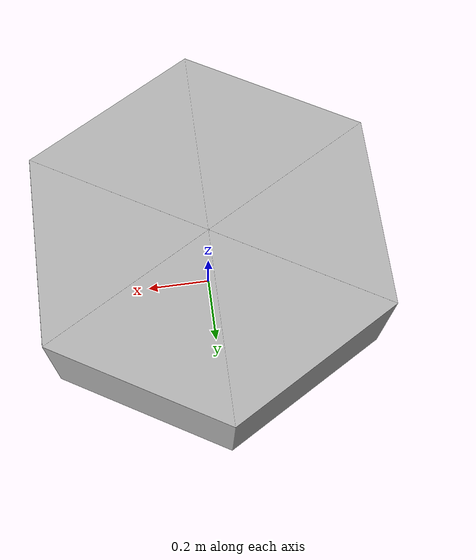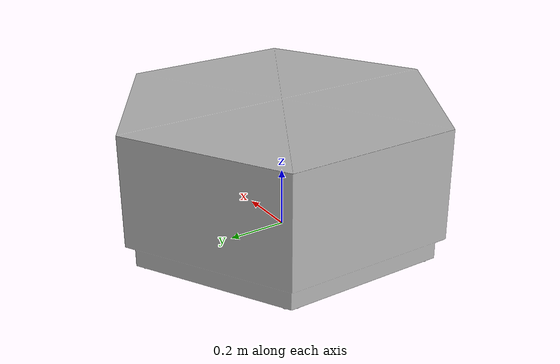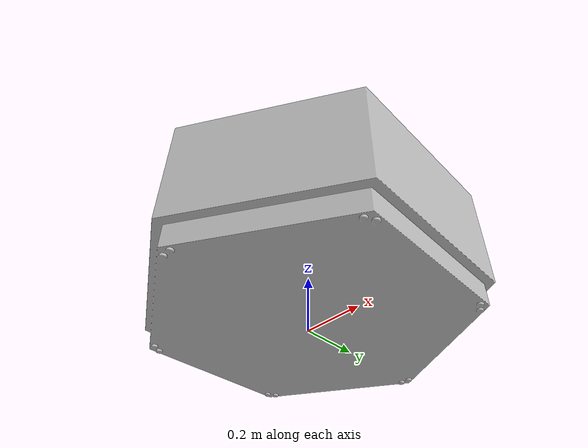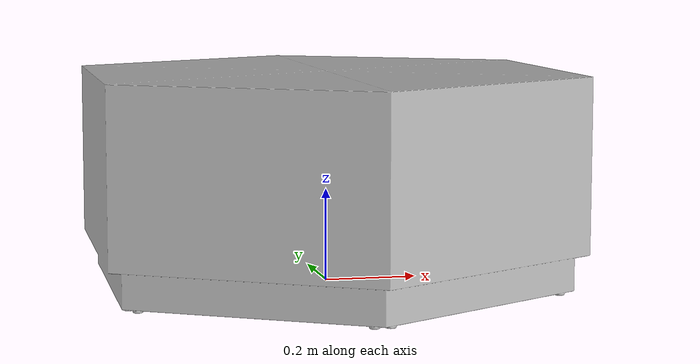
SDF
<sdf version="1.6">
	<model name="CoffeeTables_Ob665b83f5366_lod0">
		<link name="main_link">
			<visual name="visual_RootNode">
				<geometry>
					<mesh>
						<uri>model://CoffeeTables_Ob665b83f5366_lod0/meshes/visual_RootNode.dae</uri>
					</mesh>
				</geometry>
			</visual>
			<collision name="collision_RootNode_lod0_0">
				<geometry>
					<mesh>
						<uri>model://CoffeeTables_Ob665b83f5366_lod0/meshes/collision_RootNode_lod0_0.dae</uri>
					</mesh>
				</geometry>
			</collision>
		</link>
	</model>
</sdf>
